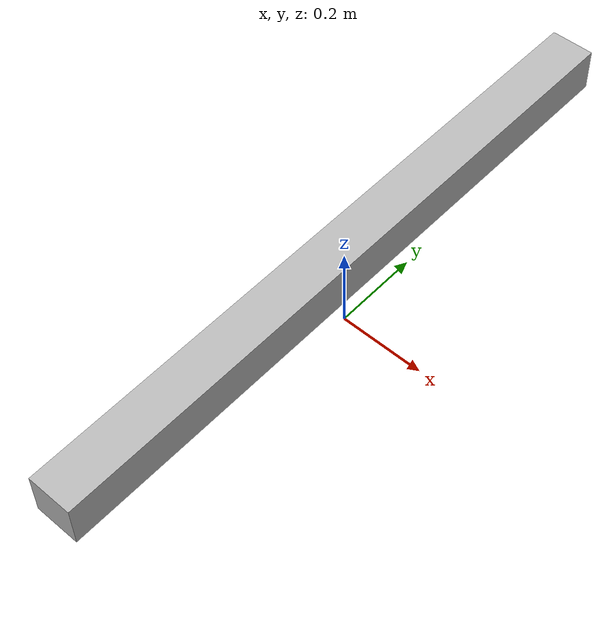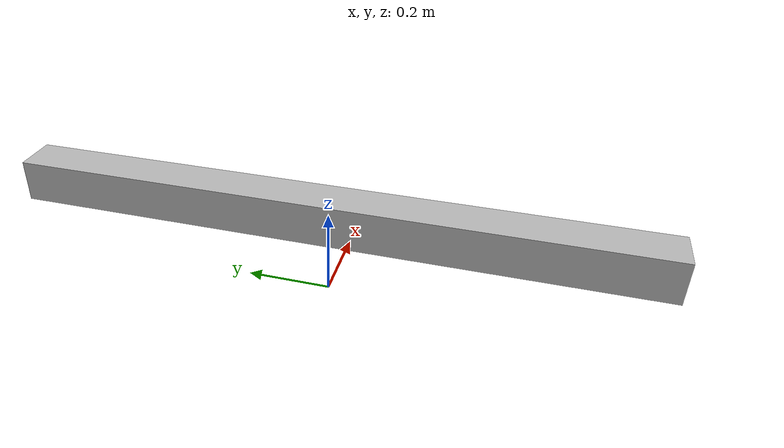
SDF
<?xml version="1.0" ?>
<sdf version="1.4">
  <model name="box">
    <static>true</static>
    <pose>0 0 0.2 0 0.0 0</pose>
    <link name="link">
      <inertial>
       <mass>3</mass>
       <inertia>
          <ixx>4.1178128125e-05</ixx>
          <ixy>0</ixy>
          <ixz>0</ixz>
          <iyy>4.1178128125e-05</iyy>
          <iyz>0</iyz>
          <izz>5.005781250000001e-06</izz>
        </inertia>
       </inertial>
       <collision name="collision">
        <geometry>
          <box>
            <size>0.1 1.5 0.1</size>
          </box>
        </geometry>
        <surface>
          <friction>
            <ode>
              <mu>20</mu>
              <mu2>20</mu2>
            </ode>
          </friction>
        </surface>
      </collision>
      <visual name="visual">
        <geometry>
          <box>
            <size>0.1 1.5 0.1</size>
          </box>
        </geometry>
       <material>
          <script>
           <uri>model://materials/scripts</uri>
           <uri>model://materials/textures</uri>
           <name>sand/floor</name>
         </script>
        </material>
      </visual>
    </link>
  </model>
</sdf>
